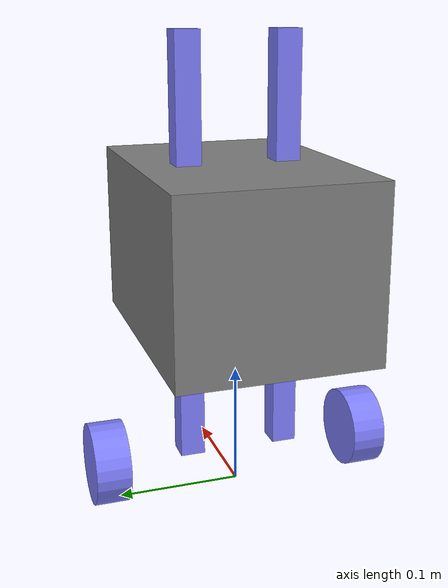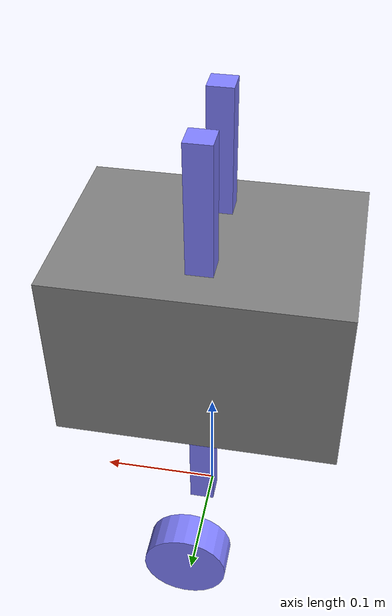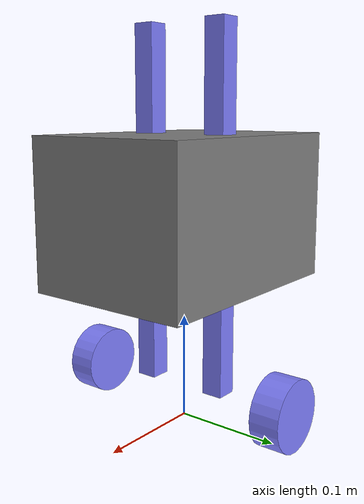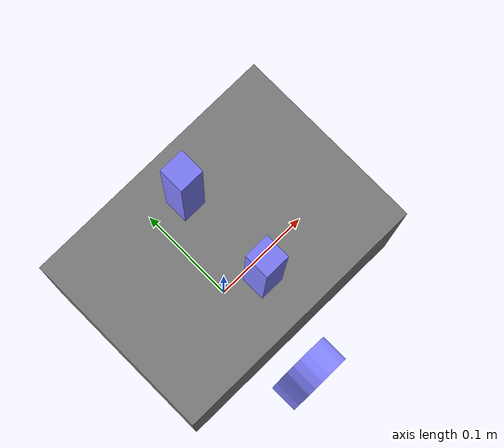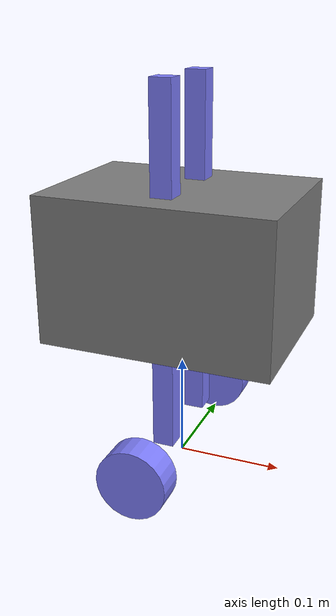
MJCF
<mujoco>
    <compiler autolimits="true" />

    <default>
        <joint damping=".03" actuatorfrcrange="-0.5 0.5" />
        <default class="wheel">
            <geom type="cylinder" size=".033 .014" rgba=".5 .5 1 1" />
        </default>
        <default class="rod">
            <geom type="box" size=".01 .01 .17" rgba=".5 .5 1 1" density="100"/>
        </default>
    </default>

    <worldbody>
        <body name="robot" pos="0 0 .203" >
            <freejoint />
            <geom type="box" size=".11 .08 .07" mass=".1"/>
            <body name="left_rod" pos="0 -.04 0">
                <joint name="left_d" type="slide" range = "-0.065 0.065"/>
                <geom class="rod" />

                <body name="left_wheel" pos="0 -0.07 -0.17" zaxis="0 1 0">
                    <joint name="left_r" />
                    <geom class="wheel" />
                </body>
            </body>
            <body name="right_rod" pos="0 .04 0">
                <joint name="right_d" type="slide" range = "-0.065 0.065"/>
                <geom class="rod" />

                <body name="right_wheel" pos="0 0.07 -0.17" zaxis="0 1 0">
                    <joint name="right_r" />
                    <geom class="wheel" />
                </body>
            </body>
        </body>
    </worldbody>

    <tendon>
        <fixed name="left_m1">
            <joint joint="left_r" coef="1" />
            <joint joint="left_d" coef="1" />
        </fixed>
        <fixed name="left_m2">
            <joint joint="left_r" coef="1" />
            <joint joint="left_d" coef="-1" />
        </fixed>
        <fixed name="right_m1">
            <joint joint="right_r" coef="1" />
            <joint joint="right_d" coef="1" />
        </fixed>
        <fixed name="right_m2">
            <joint joint="right_r" coef="1" />
            <joint joint="right_d" coef="-1" />
        </fixed>
    </tendon>

    <actuator>
        <motor name="left_m1_motor" tendon="left_m1" ctrlrange="-100 100"/>
        <motor name="left_m2_motor" tendon="left_m2"  ctrlrange="-100 100"/>
        <motor name="right_m1_motor" tendon="right_m1" ctrlrange="-100 100"/>
        <motor name="right_m2_motor" tendon="right_m2" ctrlrange="-100 100"/>
    </actuator>

</mujoco>
